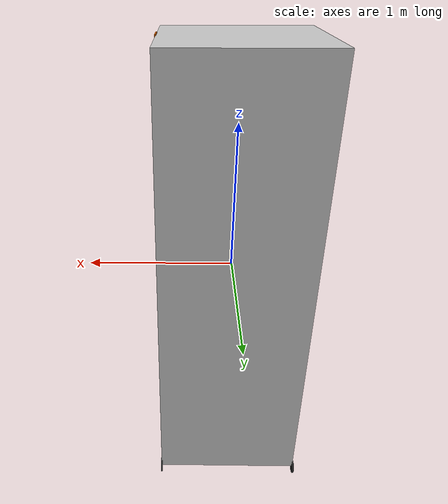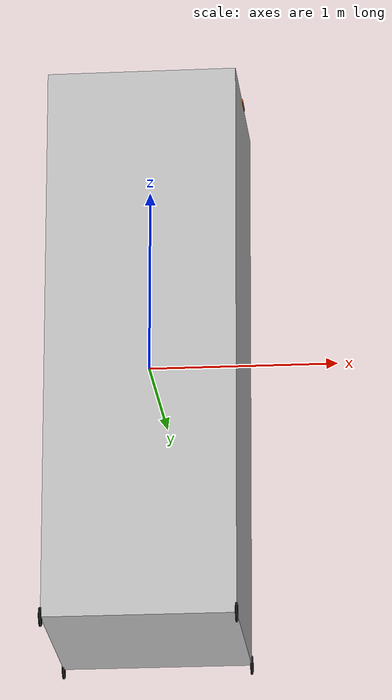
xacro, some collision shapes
<?xml version="1.0" ?>
<robot name="irpaan_car" xmlns:xacro="http://ros.org/wiki/xacro">
    <xacro:include filename="$(find flipkart)/models/irpaan_car.urdf.xacro" />
    <xacro:include filename="$(find flipkart)/models/realsense/realsense-RS200.macro.xacro"/>

    <xacro:realsense-rs200 prefix="" parent="base">
        <origin xyz="0.5 0 1.5" rpy="0 0 0" />
    </xacro:realsense-rs200>

</robot>

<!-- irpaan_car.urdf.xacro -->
<robot name="car" xmlns:xacro="http://ros.org/wiki/xacro">

    <link name="base">

        <inertial>
            <mass value="2.0"/>
            <inertia ixx="1.66666665" iyy="1.666666665" izz="3.3333335" ixy="0" ixz="0" iyz="0"/>
        </inertial>

        <collision>

            <geometry>
                <box size="1 1 3"/>
            </geometry>

        </collision>

        <visual>
            <geometry>
                <box size="1 1 3"/>
            </geometry>

            <material name="silver">
                <color rgba="0.75 0.75 0.75 1"/>
            </material>
        </visual>

    </link>

    <link name="front_right_wheel">

        <inertial>
            <mass value="0.1"/>
            <inertia ixx="6.3333e-5" iyy="6.3333e-5" izz="0.000125" ixy="0" ixz="0" iyz="0"/>
        </inertial>
        <collision>
            <geometry>
                <cylinder length="0.01" radius="0.05"/>
            </geometry>
        </collision>

        <visual>
            <geometry>
                <cylinder length="0.01" radius="0.05"/>
            </geometry>
            <material name="black">
                <color rgba="0 0 0 1"/>
            </material>
        </visual>
    </link>

    <joint name="front_right_wheel_joint" type="continuous">
        <axis xyz="0 0 1"/>
        <parent link="base"/>
        <child link="front_right_wheel"/>
        <origin rpy="0 -1.5708 0" xyz="0.5 -0.5 -1.5"/>
    </joint>

    <link name="front_left_wheel">
         <inertial>
            <mass value="0.1"/>
            <inertia ixx="6.2708e-5" iyy="6.2708e-5" izz="0.000125" ixy="0" ixz="0" iyz="0"/>
        </inertial>
        <collision>
            <geometry>
                <cylinder length="0.01" radius="0.05"/>
            </geometry>
        </collision>

        <visual>
            <geometry>
                <cylinder length="0.01" radius="0.05"/>
            </geometry>
            <material name="black"/>
        </visual>
    </link>

    <joint name="front_left_wheel_joint" type="continuous">
        <axis xyz="0 0 1"/>
        <parent link="base"/>
        <child link="front_left_wheel"/>
        <origin rpy="0 -1.5708 0" xyz="0.5 0.5 -1.5"/>
    </joint>

    <link name="back_right_wheel">
         <inertial>
            <mass value="0.1"/>
            <inertia ixx="6.2708e-5" iyy="6.2708e-5" izz="0.000125" ixy="0" ixz="0" iyz="0"/>
        </inertial>
        <collision>
            <geometry>
                <cylinder length="0.01" radius="0.05"/>
            </geometry>
        </collision>

        <visual>
            <geometry>
                <cylinder length="0.01" radius="0.05"/>
            </geometry>
            <material name="black">
                <color rgba="0 0 0 1"/>
            </material>
        </visual>
    </link>

    <joint name="back_right_wheel_joint" type="continuous">
        <axis xyz="0 0 1"/>
        <parent link="base"/>
        <child link="back_right_wheel"/>
        <origin rpy="0 -1.5708 0" xyz="-0.5 -0.5 -1.5"/>
    </joint>

    <link name="back_left_wheel">
        <inertial>
            <mass value="0.1"/>
            <inertia ixx="6.2708e-5" iyy="6.2708e-5" izz="0.000125" ixy="0" ixz="0" iyz="0"/>
        </inertial>
        <collision>
            <geometry>
                <cylinder length="0.01" radius="0.05"/>
            </geometry>
        </collision>

        <visual>
            <geometry>
                <cylinder length="0.01" radius="0.05"/>
            </geometry>
            <material name="black"/>
        </visual>
    </link>

    <joint name="back_left_wheel_joint" type="continuous">
        <axis xyz="0 0 1"/>
        <parent link="base"/>
        <child link="back_left_wheel"/>
        <origin rpy="0 -1.5708 0" xyz="-0.5 0.5 -1.5"/>
    </joint>

    <!-- gazebo -->
    <gazebo reference="base">
        <material>Gazebo/Grey</material>
        <mu1>0.1</mu1>
        <mu2>0.1</mu2>
    </gazebo>
    <gazebo reference="back_left_wheel">
        <material>Gazebo/Black</material>
        <mu1>0.1</mu1>
        <mu2>0.1</mu2>
    </gazebo>
    <gazebo reference="back_right_wheel">
        <material>Gazebo/Black</material>
        <mu1>0.1</mu1>
        <mu2>0.1</mu2>
    </gazebo>
    <gazebo reference="front_left_wheel">
        <material>Gazebo/Black</material>
        <mu1>0.1</mu1>
        <mu2>0.1</mu2>
    </gazebo>
    <gazebo reference="front_right_wheel">
        <material>Gazebo/Black</material>
        <mu1>0.1</mu1>
        <mu2>0.1</mu2>
    </gazebo>

    <transmission name="back_left">
        <type>transmission_interface/SimpleTransmission</type>
        <joint name="back_left_wheel_joint">
            <hardwareInterface>hardware_interface/VelocityJointInterface</hardwareInterface>
            </joint>
        <actuator name="back_left_motor">
            <mechanicalReduction>100</mechanicalReduction>
        </actuator>
    </transmission>
    <transmission name="back_right">
        <type>transmission_interface/SimpleTransmission</type>
        <joint name="back_right_wheel_joint">
            <hardwareInterface>hardware_interface/VelocityJointInterface</hardwareInterface>
            </joint>
        <actuator name="back_right_motor">
            <mechanicalReduction>100</mechanicalReduction>
        </actuator>
    </transmission>
    <transmission name="front_left">
        <type>transmission_interface/SimpleTransmission</type>
        <joint name="front_left_wheel_joint">
            <hardwareInterface>hardware_interface/VelocityJointInterface</hardwareInterface>
            </joint>
        <actuator name="front_left_motor">
            <mechanicalReduction>100</mechanicalReduction>
        </actuator>
    </transmission>
    <transmission name="front_right">
        <type>transmission_interface/SimpleTransmission</type>
        <joint name="front_right_wheel_joint">
            <hardwareInterface>hardware_interface/VelocityJointInterface</hardwareInterface>
            </joint>
        <actuator name="front_right_motor">
            <mechanicalReduction>100</mechanicalReduction>
        </actuator>
    </transmission>

    <gazebo>
        <plugin name="gazebo_ros_control" filename="libgazebo_ros_control.so">
        <robotNamespace>/</robotNamespace>
        </plugin>
    </gazebo>

</robot>

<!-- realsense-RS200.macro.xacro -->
<robot name="realsense" xmlns:xacro="http://ros.org/wiki/xacro">
<xacro:macro name="realsense-rs200" params="prefix parent *origin">

    <!-- Camera link -->
    <link name="${prefix}rs200_camera">
        <visual>
            <origin rpy="0 0 0" xyz="0 0 0"/>
            <geometry>
                <mesh filename="package://car/urdf/sensors/realsense/meshes/realsense.dae"/>
            </geometry>
        </visual>
        <collision>
            <geometry>
                <box size="0.0078 0.130 0.0192"/>
            </geometry>
        </collision>
        <inertial>
            <mass value="0.0615752"/>
            <origin rpy="0 0 0" xyz="0 0 0"/>
            <inertia ixx="9.108e-05"
                     ixy="0"
                     ixz="0"
                     iyy="2.51e-06"
                     iyz="0"
                     izz="8.931e-05"
            />
        </inertial>
    </link>

    <!-- Connect camera to parent frame-->
    <joint name="${prefix}realsense_joint" type="fixed">
        <parent link="${parent}"/>
        <child link="${prefix}rs200_camera"/>
        <xacro:insert_block name="origin"/>
    </joint>

    <!-- Virtual links representing the cameras positons and orientations-->
    <link name="${prefix}color" />
    <link name="${prefix}depth" />
    <link name="${prefix}ired1" />
    <link name="${prefix}ired2" />

    <!-- Joints positioning the virtual links with respect to the camera main link-->
    <joint name="${prefix}color_joint" type="fixed">
        <parent link="${prefix}rs200_camera" />
        <child link="${prefix}color" />
        <!-- The default position is change since in Rviz the cloud depth axis is Z not X-->
        <origin xyz="0 -0.046 0.004" rpy="${pi/2} ${pi} ${pi/2}"/>
    </joint>

    <joint name="${prefix}depth_joint" type="fixed">
        <parent link="${prefix}rs200_camera" />
        <child link="${prefix}depth" />
        <origin xyz="0 -0.03 0.004" rpy="0 0 0"/>
    </joint>

    <joint name="${prefix}ired1_joint" type="fixed">
        <parent link="${prefix}rs200_camera" />
        <child link="${prefix}ired1" />
        <origin xyz="0 -0.06 0.004" rpy="0 0 0"/>
    </joint>

    <joint name="${prefix}ired2_joint" type="fixed">
        <parent link="${prefix}rs200_camera" />
        <child link="${prefix}ired2" />
        <origin xyz="0 0.01 0.004" rpy="0 0 0"/>
    </joint>

<!-- GAZEBO DEFINITIONS ***************************************-->

    <!-- Load plugin to the model ("robot" in urdf format)-->
    <gazebo>
        <plugin name="${prefix}r200" filename="librealsense_gazebo_plugin.so">
            <prefix>${prefix}</prefix>
        </plugin>
    </gazebo>

    <!-- Load parameters to model's main link-->
    <gazebo reference="${prefix}rs200_camera">
        <self_collide>0</self_collide>
        <enable_wind>0</enable_wind>
        <kinematic>0</kinematic>
        <gravity>1</gravity>
        <mu2>1</mu2>
        <fdir1>0 0 0</fdir1>
        <kp>1e+13</kp>
        <kd>1</kd>

        <sensor name="${prefix}color" type="camera">
            <pose frame="">0 -0.046 0.004 0 0 0</pose>
            <camera name="${prefix}rs200_camera">
            <horizontal_fov>1.047</horizontal_fov>
            <image>
                <width>640</width>
                <height>480</height>
                <format>RGB_INT8</format>
            </image>
            <clip>
                <near>0.1</near>
                <far>100</far>
            </clip>
            <noise>
                <type>gaussian</type>
                <mean>0.0</mean>
                <stddev>0.007</stddev>
            </noise>
            </camera>
            <always_on>1</always_on>
            <update_rate>60</update_rate>
            <visualize>1</visualize>
        </sensor>
        <sensor name="${prefix}ired1" type="camera">
            <pose frame="">0 -0.06 0.004 0 0 0</pose>
            <camera name="${prefix}rs200_camera">
            <horizontal_fov>1.047</horizontal_fov>
            <image>
                <width>640</width>
                <height>480</height>
                <format>L_INT8</format>
            </image>
            <clip>
                <near>0.1</near>
                <far>100</far>
            </clip>
            <noise>
                <type>gaussian</type>
                <mean>0.0</mean>
                <stddev>0.05</stddev>
            </noise>
            </camera>
            <always_on>1</always_on>
            <update_rate>60</update_rate>
            <visualize>0</visualize>
        </sensor>
        <sensor name="${prefix}ired2" type="camera">
            <pose frame="">0 0.01 0.004 0 0 0</pose>
            <camera name="${prefix}rs200_camera">
            <horizontal_fov>1.047</horizontal_fov>
            <image>
                <width>640</width>
                <height>480</height>
                <format>L_INT8</format>
            </image>
            <clip>
                <near>0.1</near>
                <far>100</far>
            </clip>
            <noise>
                <type>gaussian</type>
                <mean>0.0</mean>
                <stddev>0.05</stddev>
            </noise>
            </camera>
            <always_on>1</always_on>
            <update_rate>60</update_rate>
            <visualize>0</visualize>
        </sensor>
        <sensor name="${prefix}depth" type="depth">
            <pose frame="">0 -0.03 0.004 0 0 0</pose>
            <camera name="${prefix}rs200_camera">
            <horizontal_fov>1.047</horizontal_fov>
            <image>
                    <width>640</width>
                    <height>480</height>
            </image>
            <clip>
                    <near>0.1</near>
                    <far>100</far>
            </clip>
            <noise>
                    <type>gaussian</type>
                    <mean>0.0</mean>
                    <stddev>0.100</stddev>
            </noise>
            </camera>
            <always_on>1</always_on>
            <update_rate>60</update_rate>
            <visualize>0</visualize>
        </sensor>
    </gazebo>

</xacro:macro>
</robot>
